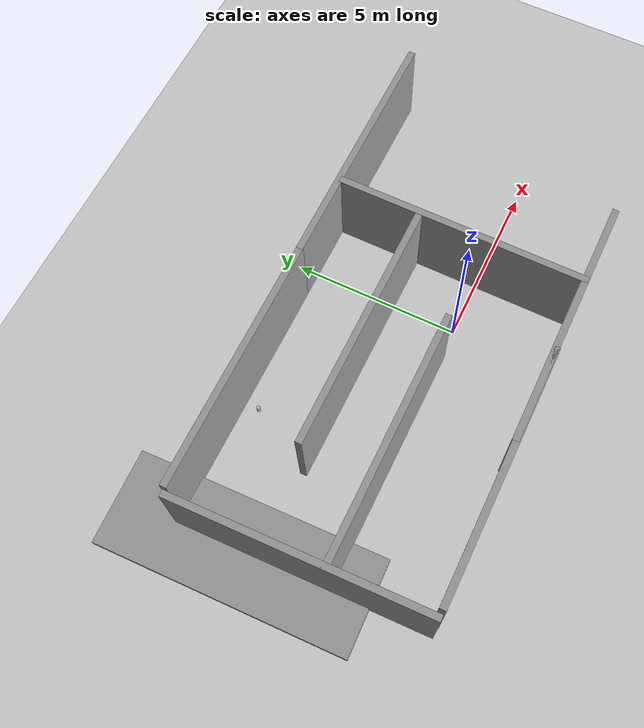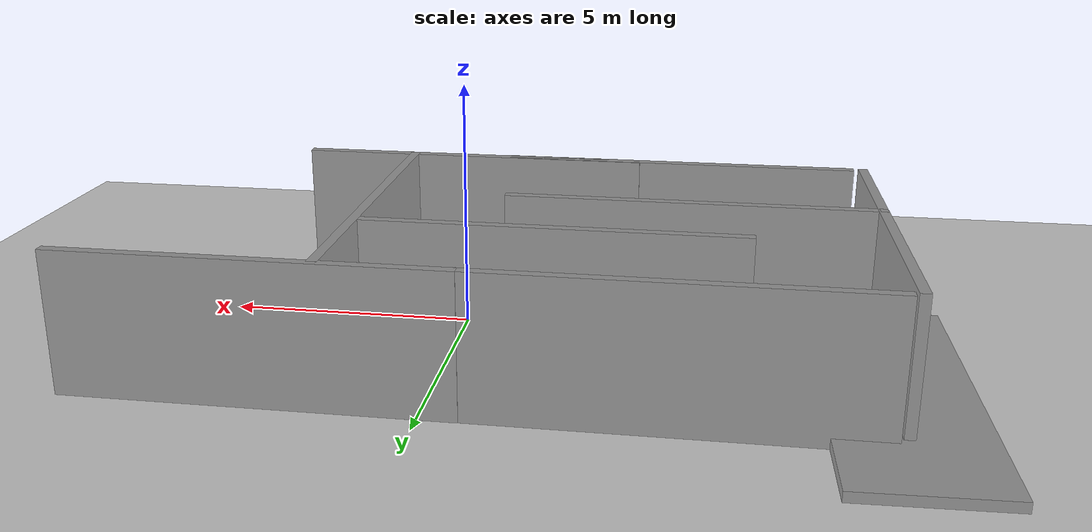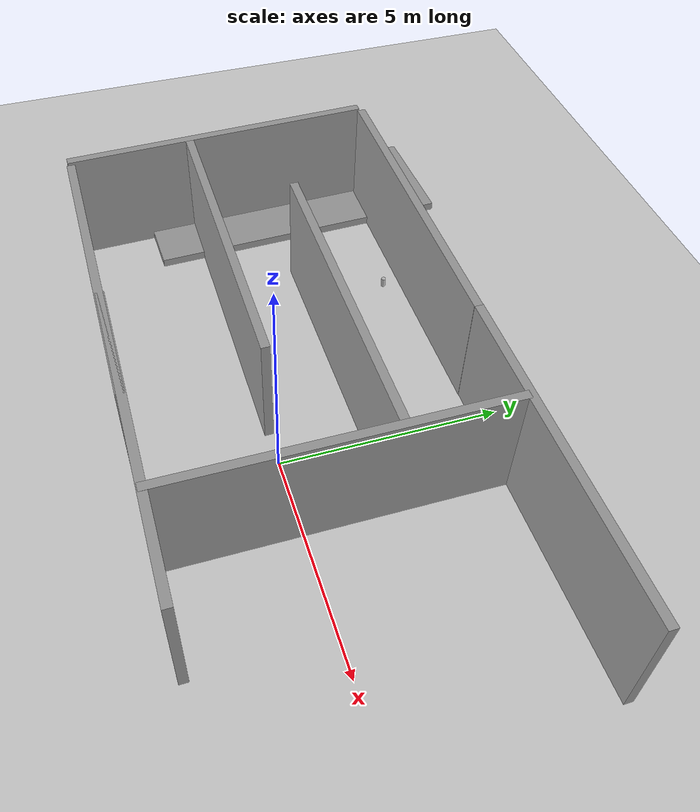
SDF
<sdf version="1.6">
 <world name="default">
  <light name="sun" type="directional">
   <pose>0 0 10 0 -0 0</pose>
   <diffuse>0.8 0.8 0.8 1</diffuse>
   <specular>0.2 0.2 0.2 1</specular>
   <attenuation>
    <range>1000</range>
    <constant>0.9</constant>
    <linear>0.01</linear>
    <quadratic>0.001</quadratic>
   </attenuation>
   <direction>-0.5 0.1 -0.9</direction>
  </light>
  <model name="ground_plane">
   <static>1</static>
   <link name="link">
    <collision name="collision">
     <geometry><plane><normal>0 0 1</normal><size>100 100</size></plane></geometry>
     <surface><friction><ode><mu>100</mu><mu2>50</mu2></ode></friction></surface>
    </collision>
    <visual name="visual">
     <cast_shadows>0</cast_shadows>
     <geometry><plane><normal>0 0 1</normal><size>100 100</size></plane></geometry>
     <material>
      <script><uri>file://media/materials/scripts/gazebo.material</uri><name>Gazebo/Grey</name></script>
     </material>
    </visual>
    <velocity_decay><linear>0</linear><angular>0</angular></velocity_decay>
   </link>
  </model>
  <physics name="default_physics" default="0" type="ode">
   <max_step_size>0.001</max_step_size>
   <real_time_factor>1</real_time_factor>
   <real_time_update_rate>1000</real_time_update_rate>
  </physics>
  <scene><ambient>0.4 0.4 0.4 1</ambient><background>0.7 0.7 0.7 1</background><shadows>1</shadows></scene>
  <spherical_coordinates>
   <surface_model>EARTH_WGS84</surface_model>
   <latitude_deg>0</latitude_deg>
   <longitude_deg>0</longitude_deg>
   <elevation>0</elevation>
   <heading_deg>0</heading_deg>
  </spherical_coordinates>
  <model name="grey_wall">
   <static>1</static>
   <link name="link">
    <pose>0 0 1.4 0 -0 0</pose>
    <collision name="collision"><geometry><box><size>7.5 0.2 2.8</size></box></geometry></collision>
    <visual name="visual">
     <cast_shadows>0</cast_shadows>
     <geometry><box><size>7.5 0.2 2.8</size></box></geometry>
     <material>
      <script>
       <uri>model://grey_wall/materials/scripts</uri>
       <uri>model://grey_wall/materials/textures</uri>
       <name>vrc/grey_wall</name>
      </script>
     </material>
    </visual>
    <velocity_decay><linear>0</linear><angular>0</angular></velocity_decay>
   </link>
   <pose>-4.45669 4.51369 0 0 -0 0</pose>
  </model>
  <model name="grey_wall_0">
   <static>1</static>
   <link name="link">
    <pose>0 0 1.4 0 -0 0</pose>
    <collision name="collision"><geometry><box><size>7.5 0.2 2.8</size></box></geometry></collision>
    <visual name="visual">
     <cast_shadows>0</cast_shadows>
     <geometry><box><size>7.5 0.2 2.8</size></box></geometry>
     <material>
      <script>
       <uri>model://grey_wall/materials/scripts</uri>
       <uri>model://grey_wall/materials/textures</uri>
       <name>vrc/grey_wall</name>
      </script>
     </material>
    </visual>
    <velocity_decay><linear>0</linear><angular>0</angular></velocity_decay>
   </link>
   <pose>-4.17438 -2.94975 0 0 -0 0</pose>
  </model>
  <model name="grey_wall_1">
   <static>1</static>
   <link name="link">
    <pose>0 0 1.4 0 -0 0</pose>
    <collision name="collision"><geometry><box><size>7.5 0.2 2.8</size></box></geometry></collision>
    <visual name="visual">
     <cast_shadows>0</cast_shadows>
     <geometry><box><size>7.5 0.2 2.8</size></box></geometry>
     <material>
      <script>
       <uri>model://grey_wall/materials/scripts</uri>
       <uri>model://grey_wall/materials/textures</uri>
       <name>vrc/grey_wall</name>
      </script>
     </material>
    </visual>
    <velocity_decay><linear>0</linear><angular>0</angular></velocity_decay>
   </link>
   <pose>-8.24091 0.730795 0 0 0 -1.53854</pose>
  </model>
  <model name="grey_wall_2">
   <static>1</static>
   <link name="link">
    <pose>0 0 1.4 0 -0 0</pose>
    <collision name="collision"><geometry><box><size>7.5 0.2 2.8</size></box></geometry></collision>
    <visual name="visual">
     <cast_shadows>0</cast_shadows>
     <geometry><box><size>7.5 0.2 2.8</size></box></geometry>
     <material>
      <script>
       <uri>model://grey_wall/materials/scripts</uri>
       <uri>model://grey_wall/materials/textures</uri>
       <name>vrc/grey_wall</name>
      </script>
     </material>
    </visual>
    <velocity_decay><linear>0</linear><angular>0</angular></velocity_decay>
   </link>
   <pose>-4.55904 0 0 0 -0 0</pose>
  </model>
  <model name="grey_wall_3">
   <static>1</static>
   <link name="link">
    <pose>0 0 1.4 0 -0 0</pose>
    <collision name="collision"><geometry><box><size>7.5 0.2 2.8</size></box></geometry></collision>
    <visual name="visual">
     <cast_shadows>0</cast_shadows>
     <geometry><box><size>7.5 0.2 2.8</size></box></geometry>
     <material>
      <script>
       <uri>model://grey_wall/materials/scripts</uri>
       <uri>model://grey_wall/materials/textures</uri>
       <name>vrc/grey_wall</name>
      </script>
     </material>
    </visual>
    <velocity_decay><linear>0</linear><angular>0</angular></velocity_decay>
   </link>
   <pose>1.76758 0.74778 0.00212 0 0 -1.57102</pose>
  </model>
  <model name="grey_wall_4">
   <static>1</static>
   <link name="link">
    <pose>0 0 1.4 0 -0 0</pose>
    <collision name="collision"><geometry><box><size>7.5 0.2 2.8</size></box></geometry></collision>
    <visual name="visual">
     <cast_shadows>0</cast_shadows>
     <geometry><box><size>7.5 0.2 2.8</size></box></geometry>
     <material>
      <script>
       <uri>model://grey_wall/materials/scripts</uri>
       <uri>model://grey_wall/materials/textures</uri>
       <name>vrc/grey_wall</name>
      </script>
     </material>
    </visual>
    <velocity_decay><linear>0</linear><angular>0</angular></velocity_decay>
   </link>
   <pose>0.431481 -2.92293 0 0 -0 0</pose>
  </model>
  <model name="grey_wall_5">
   <static>1</static>
   <link name="link">
    <pose>0 0 1.4 0 -0 0</pose>
    <collision name="collision"><geometry><box><size>7.5 0.2 2.8</size></box></geometry></collision>
    <visual name="visual">
     <cast_shadows>0</cast_shadows>
     <geometry><box><size>7.5 0.2 2.8</size></box></geometry>
     <material>
      <script>
       <uri>model://grey_wall/materials/scripts</uri>
       <uri>model://grey_wall/materials/textures</uri>
       <name>vrc/grey_wall</name>
      </script>
     </material>
    </visual>
    <velocity_decay><linear>0</linear><angular>0</angular></velocity_decay>
   </link>
   <pose>-2 2 0 0 -0 0</pose>
  </model>
  <model name="grey_wall_6">
   <static>1</static>
   <link name="link">
    <pose>0 0 1.4 0 -0 0</pose>
    <collision name="collision"><geometry><box><size>7.5 0.2 2.8</size></box></geometry></collision>
    <visual name="visual">
     <cast_shadows>0</cast_shadows>
     <geometry><box><size>7.5 0.2 2.8</size></box></geometry>
     <material>
      <script>
       <uri>model://grey_wall/materials/scripts</uri>
       <uri>model://grey_wall/materials/textures</uri>
       <name>vrc/grey_wall</name>
      </script>
     </material>
    </visual>
    <velocity_decay><linear>0</linear><angular>0</angular></velocity_decay>
   </link>
   <pose>3 4.52028 0 0 -0 0</pose>
  </model>
  <gravity>0 0 -9.8</gravity>
  <magnetic_field>6e-06 2.3e-05 -4.2e-05</magnetic_field>
  <atmosphere type="adiabatic"/>
  <model name="grey_wall_1_clone">
   <static>1</static>
   <link name="link">
    <pose>0 0 1.4 0 -0 0</pose>
    <collision name="collision"><geometry><box><size>7.5 0.2 2.8</size></box></geometry></collision>
    <visual name="visual">
     <cast_shadows>0</cast_shadows>
     <geometry><box><size>7.5 0.2 2.8</size></box></geometry>
     <material>
      <script>
       <uri>model://grey_wall/materials/scripts</uri>
       <uri>model://grey_wall/materials/textures</uri>
       <name>vrc/grey_wall</name>
      </script>
     </material>
    </visual>
    <velocity_decay><linear>0</linear><angular>0</angular></velocity_decay>
   </link>
   <pose>-7 2.57468 0.1 1.57 0 -1.53854</pose>
  </model>
  <model name="beer">
   <link name="link">
    <pose>0 0 0.115 0 -0 0</pose>
    <inertial>
     <mass>0.39</mass>
     <inertia><ixx>0.00058</ixx><ixy>0</ixy><ixz>0</ixz><iyy>0.00058</iyy><iyz>0</iyz><izz>0.00019</izz></inertia>
    </inertial>
    <collision name="collision">
     <geometry><cylinder><radius>0.055</radius><length>0.23</length></cylinder></geometry>
    </collision>
    <visual name="visual">
     <geometry><cylinder><radius>0.055</radius><length>0.23</length></cylinder></geometry>
     <material>
      <script>
       <uri>model://beer/materials/scripts</uri>
       <uri>model://beer/materials/textures</uri>
       <name>Beer/Diffuse</name>
      </script>
     </material>
    </visual>
   </link>
   <pose>-4.61145 4.00396 -7e-06 0 0 -6e-06</pose>
  </model>
  <model name="marble_1_5cm">
   <link name="link">
    <pose>0 0 0.0075 0 -0 0</pose>
    <inertial>
     <mass>0.0062</mass>
     <inertia>
      <ixx>1.395e-07</ixx>
      <ixy>0</ixy>
      <ixz>0</ixz>
      <iyy>1.395e-07</iyy>
      <iyz>0</iyz>
      <izz>1.395e-07</izz>
     </inertia>
    </inertial>
    <collision name="collision">
     <geometry><sphere><radius>0.0075</radius></sphere></geometry>
     <surface>
      <contact>
       <poissons_ratio>0.22</poissons_ratio>
       <elastic_modulus>5.1e+10</elastic_modulus>
       <ode><kp>100000</kp><kd>100</kd><max_vel>100</max_vel><min_depth>0.001</min_depth></ode>
      </contact>
      <friction>
       <torsional>
        <coefficient>1</coefficient>
        <use_patch_radius>0</use_patch_radius>
        <surface_radius>0.01</surface_radius>
       </torsional>
      </friction>
     </surface>
    </collision>
    <visual name="visual">
     <geometry><sphere><radius>0.0075</radius></sphere></geometry>
     <material>
      <script><uri>file://media/materials/scripts/gazebo.material</uri><name>Gazebo/Blue</name></script>
     </material>
    </visual>
    <velocity_decay><linear>0</linear><angular>0.005</angular></velocity_decay>
   </link>
   <pose>-5.14955 2.3926 -0.000906 0 -0 0</pose>
  </model>
 </world>
</sdf>
